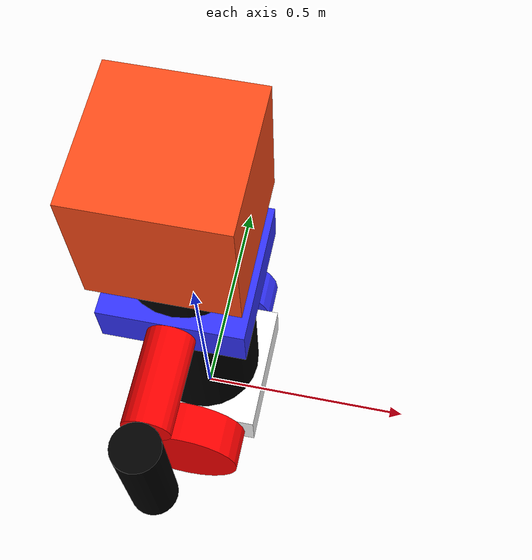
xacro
<?xml version="1.0"?>

<robot name="ros_urdf" xmlns:xacro="http://www.ros.org/wiki/xacro" >

    <xacro:include filename="inertial_macros.xacro"/>

    <xacro:property name="head_length_x" value="0.3"/>
    <xacro:property name="head_width" value="0.3"/>
    <xacro:property name="head_height" value="0.3"/>
    <xacro:property name="head_mass" value="1.0"/>

    <xacro:property name="head_x" value="0.0"/>
    <xacro:property name="head_y" value="0.0"/>
    <xacro:property name="head_z" value="0.9"/>

    <xacro:property name="wheel_radius" value="0.13"/>
    <xacro:property name="wheel_thickness" value="0.09"/>
    <xacro:property name="wheel_mass" value="0.05"/>
    <xacro:property name="wheel_offset_x" value="0.226"/>
    <xacro:property name="wheel_offset_y" value="0.1485"/>
    <xacro:property name="wheel_offset_z" value="0.01"/>

    <xacro:property name="arm_thickness" value="0.3"/>
    <xacro:property name="arm_radius" value="0.05"/>

    <material name="white">
        <color rgba="1 1 1 1" />
    </material>

    <material name="orange">
        <color rgba="1 0.3 0.1 1"/>
    </material>

    <material name="blue">
        <color rgba="0.2 0.2 1 1"/>
    </material>

    <material name="black">
        <color rgba="0 0 0 1"/>
    </material>

    <material name="red">
        <color rgba="1 0 0 1"/>
    </material>

    <!-- start -->
    <!-- 머리  -->
    <link name="base_link">
        <visual>
            <origin xyz="${head_x} ${head_y} ${head_z}"/>

            <geometry>
                <box size="${head_length_x} ${head_width} ${head_height}"/>
            </geometry>

            <material name="orange"/>
        </visual>

        <collision>
            <origin xyz="${head_x} ${head_y} ${head_z}"/>
            <geometry>
                <box size="${head_length_x} ${head_width} ${head_height}"/>
            </geometry>
        </collision>

        <xacro:inertial_box mass="0.5" x="${head_length_x}" y="${head_width}" z="${head_height}">
            <origin xyz="${head_x} ${head_y} ${head_z}" rpy="0 0 0"/>
        </xacro:inertial_box>
    </link>

    <joint name="head_joint" type="fixed">
        <parent link="base_link"/>
        <child link="base_link_1"/>
        <origin xyz="${head_x} ${head_y} 0"/>
    </joint>

    <!-- base 1    가슴    -->
    <link name="base_link_1">
        <visual>
            <origin xyz="0 0 0.6"/>

            <geometry>
                <box size="0.3 0.3 0.1"/>
            </geometry>

            <material name="blue"/>
        </visual>

        <collision>
            <origin xyz="0 0 0.6"/>
            <geometry>
                <box size="0.3 0.3 0.1"/>
            </geometry>
        </collision>

        <xacro:inertial_box mass="0.5" x="0.3" y="0.3" z="0.1">
            <origin xyz="0 0 0.6" rpy="0 0 0"/>
        </xacro:inertial_box>
    </link>

    <!-- left arm    -->
    <joint name="left_arm_joint" type="continuous">
        <parent link="base_link_1"/>
        <child link="left_arm"/>
        <origin xyz="0 0.2 0.6" rpy="-${pi/2} 0 0" />
        <axis xyz="0 0 1"/>
    </joint>

    <link name="left_arm">
        <visual>
            <geometry>
                <cylinder radius="${arm_radius}" length="${arm_thickness}"/>
            </geometry>
            <material name="blue"/>
        </visual>

        <collision>
            <geometry>
                <sphere radius="${arm_radius}"/>
            </geometry>
        </collision>

        <xacro:inertial_cylinder mass="${wheel_mass}" length="${arm_thickness}" radius="${arm_radius}">
            <origin xyz="0 0 0" rpy="0 0 0"/>
        </xacro:inertial_cylinder>
    </link>

    <joint name="left_arm2_joint" type="continuous">
        <parent link="left_arm"/>
        <child link="left_arm2"/>
        <origin xyz="0 0.1 0.2" rpy="-${pi/2} 0 0" />
        <axis xyz="0 0 1"/>
    </joint>

    <link name="left_arm2">
        <visual>
            <geometry>
                <cylinder radius="${arm_radius}" length="${arm_thickness}"/>
            </geometry>
            <material name="black"/>
        </visual>

        <collision>
            <geometry>
                <sphere radius="${arm_radius}"/>
            </geometry>
        </collision>

        <xacro:inertial_cylinder mass="${wheel_mass}" length="${arm_thickness}" radius="${arm_radius}">
            <origin xyz="0 0 0" rpy="0 0 0"/>
        </xacro:inertial_cylinder>
    </link>

    <!-- right arm    -->
    <joint name="right_arm_joint" type="continuous">
        <parent link="base_link_1"/>
        <child link="right_arm"/>
        <origin xyz="0 -0.2 0.6" rpy="-${pi/2} 0 0" />
        <axis xyz="0 0 1"/>
    </joint>

    <link name="right_arm">
        <visual>
            <geometry>
                <cylinder radius="${arm_radius}" length="${arm_thickness}"/>
            </geometry>
            <material name="red"/>
        </visual>

        <collision>
            <geometry>
                <sphere radius="${arm_radius}"/>
            </geometry>
        </collision>

        <xacro:inertial_cylinder mass="${wheel_mass}" length="${arm_thickness}" radius="${arm_radius}">
            <origin xyz="0 0 0" rpy="0 0 0"/>
        </xacro:inertial_cylinder>
    </link>

    <joint name="right_arm2_joint" type="continuous">
        <parent link="right_arm"/>
        <child link="right_arm2"/>
        <origin xyz="0 0.1 -0.2" rpy="-${pi/2} 0 0" />
        <axis xyz="0 0 1"/>
    </joint>

    <link name="right_arm2">
        <visual>
            <geometry>
                <cylinder radius="${arm_radius}" length="${arm_thickness}"/>
            </geometry>
            <material name="black"/>
        </visual>

        <collision>
            <geometry>
                <sphere radius="${arm_radius}"/>
            </geometry>
        </collision>

        <xacro:inertial_cylinder mass="${wheel_mass}" length="${arm_thickness}" radius="${arm_radius}">
            <origin xyz="0 0 0" rpy="0 0 0"/>
        </xacro:inertial_cylinder>
    </link>

    <!-- base 2    배    -->
    <joint name="base2_joint" type="fixed">
        <parent link="base_link_1"/>
        <child link="base_link_2"/>
        <origin xyz="${head_x} ${head_y} 0"/>
    </joint>

    <link name="base_link_2">
        <visual>
            <origin xyz="0 0 0.5"/>

            <geometry>
                <cylinder radius="${wheel_radius}" length="0.7"/>

            </geometry>

            <material name="black"/>
        </visual>

        <collision>
            <origin xyz="0 0 0.5"/>
            <geometry>
                <sphere radius="${wheel_radius}"/>
            </geometry>
        </collision>

        <xacro:inertial_cylinder mass="${wheel_mass}" length="0.7" radius="${wheel_radius}">
            <origin xyz="0 0 0.5" rpy="0 0 0"/>
        </xacro:inertial_cylinder>

    </link>

    <!-- base 2    배    -->
    <joint name="bottom_joint" type="fixed">
        <parent link="base_link_2"/>
        <child link="bottom"/>
        <origin xyz="${head_x} ${head_y} 0"/>
    </joint>

    <link name="bottom">
        <visual>
            <origin xyz="0 0 0.1"/>

            <geometry>
                <box size="0.3 0.3 0.1"/>
            </geometry>

            <material name="white"/>
        </visual>

        <collision>
            <origin xyz="0 0 0.1"/>
            <geometry>
                <box size="0.3 0.3 0.1"/>
            </geometry>
        </collision>

        <xacro:inertial_box mass="0.5" x="0.3" y="0.3" z="0.1">
            <origin xyz="0 0 0.1" rpy="0 0 0"/>
        </xacro:inertial_box>
    </link>

    <!-- left_wheel    -->
    <joint name="left_wheel_joint" type="continuous">
        <parent link="bottom"/>
        <child link="left_wheel"/>
        <origin xyz="0 0.2 0.1" rpy="-${pi/2} 0 0" />
        <axis xyz="0 0 1"/>
    </joint>

    <link name="left_wheel">
        <visual>
            <geometry>
                <cylinder radius="${wheel_radius}" length="${wheel_thickness}"/>
            </geometry>
            <material name="blue"/>
        </visual>

        <collision>
            <geometry>
                <sphere radius="${wheel_radius}"/>
            </geometry>
        </collision>

        <xacro:inertial_cylinder mass="${wheel_mass}" length="${wheel_thickness}" radius="${wheel_radius}">
            <origin xyz="0 0 0" rpy="0 0 0"/>
        </xacro:inertial_cylinder>
    </link>

    <!-- right_wheel    -->
    <joint name="right_wheel_joint" type="continuous">
        <parent link="bottom"/>
        <child link="right_wheel"/>
        <origin xyz="0 -0.2 0.1" rpy="-${pi/2} 0 0" />
        <axis xyz="0 0 1"/>
    </joint>

    <link name="right_wheel">
        <visual>
            <geometry>
                <cylinder radius="${wheel_radius}" length="${wheel_thickness}"/>
            </geometry>
            <material name="red"/>
        </visual>

        <collision>
            <geometry>
                <sphere radius="${wheel_radius}"/>
            </geometry>
        </collision>

        <xacro:inertial_cylinder mass="${wheel_mass}" length="${wheel_thickness}" radius="${wheel_radius}">
            <origin xyz="0 0 0" rpy="0 0 0"/>
        </xacro:inertial_cylinder>
    </link>

</robot>

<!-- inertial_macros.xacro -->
<robot xmlns:xacro="http://www.ros.org/wiki/xacro" >

    <xacro:macro name="inertial_sphere" params="mass radius *origin">
        <inertial>
            <xacro:insert_block name="origin"/>
            <mass value="${mass}" />
            <inertia ixx="${(2/5) * mass * (radius*radius)}" ixy="0.0" ixz="0.0"
                iyy="${(2/5) * mass * (radius*radius)}" iyz="0.0"
                izz="${(2/5) * mass * (radius*radius)}" />
        </inertial>
    </xacro:macro>

    <xacro:macro name="inertial_box" params="mass x y z *origin">
        <inertial>
            <xacro:insert_block name="origin"/>
            <mass value="${mass}" />
            <inertia ixx="${(1/12) * mass * (y*y+z*z)}" ixy="0.0" ixz="0.0"
                iyy="${(1/12) * mass * (x*x+z*z)}" iyz="0.0"
                izz="${(1/12) * mass * (x*x+y*y)}" />
        </inertial>
    </xacro:macro>

    <xacro:macro name="inertial_cylinder" params="mass length radius *origin">
        <inertial>
            <xacro:insert_block name="origin"/>
            <mass value="${mass}" />
            <inertia ixx="${(1/12) * mass * (3*radius*radius + length*length)}" ixy="0.0" ixz="0.0"
                iyy="${(1/12) * mass * (3*radius*radius + length*length)}" iyz="0.0"
                izz="${(1/2) * mass * (radius*radius)}" />
        </inertial>
    </xacro:macro>

</robot>
